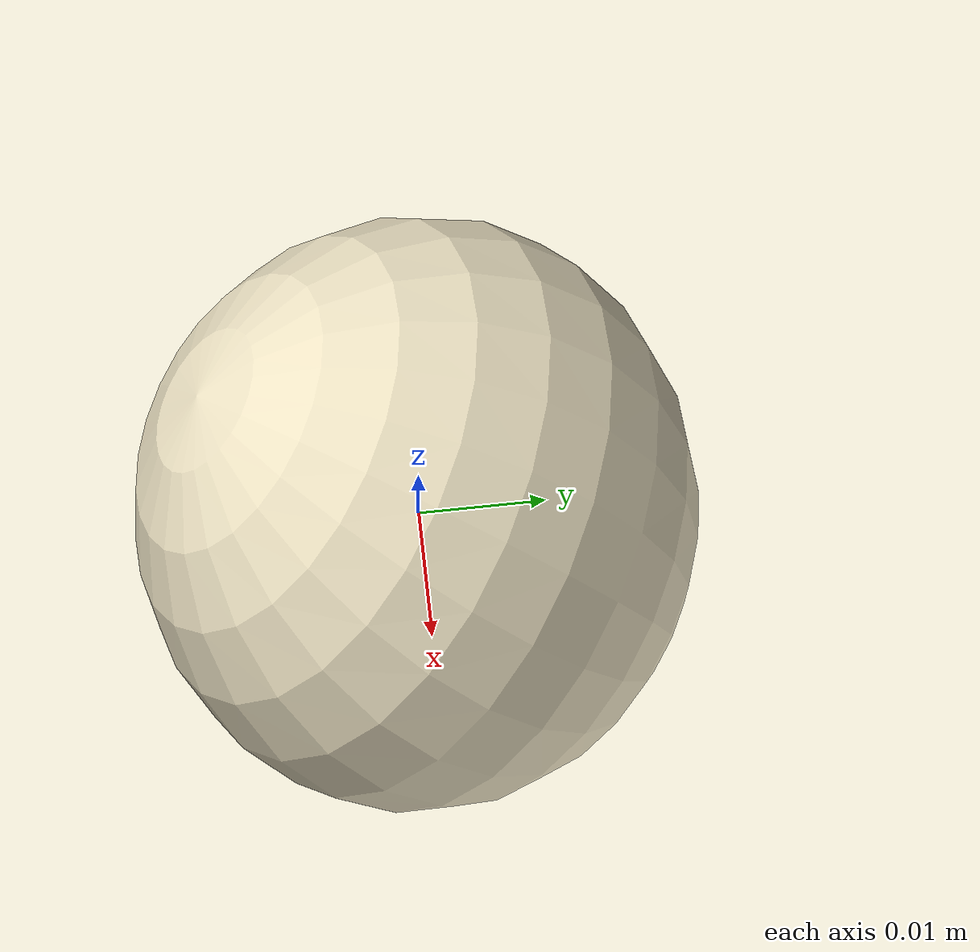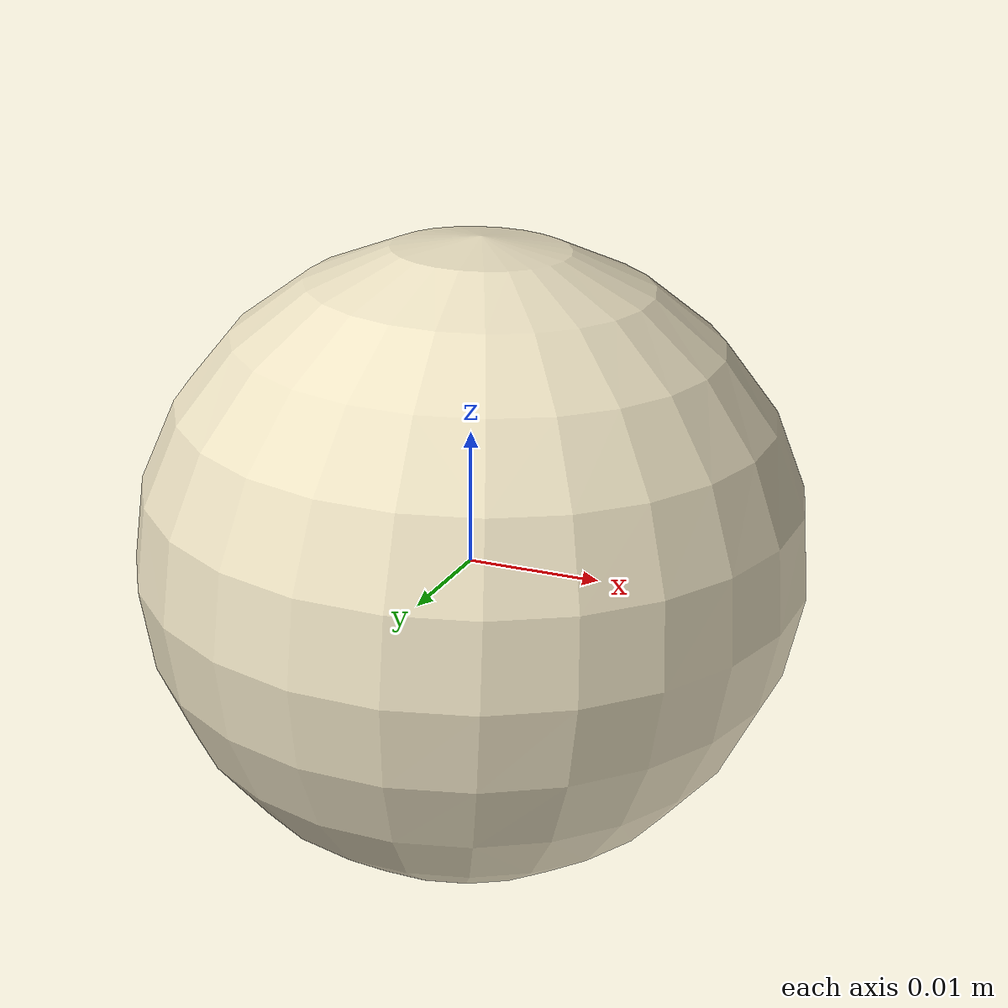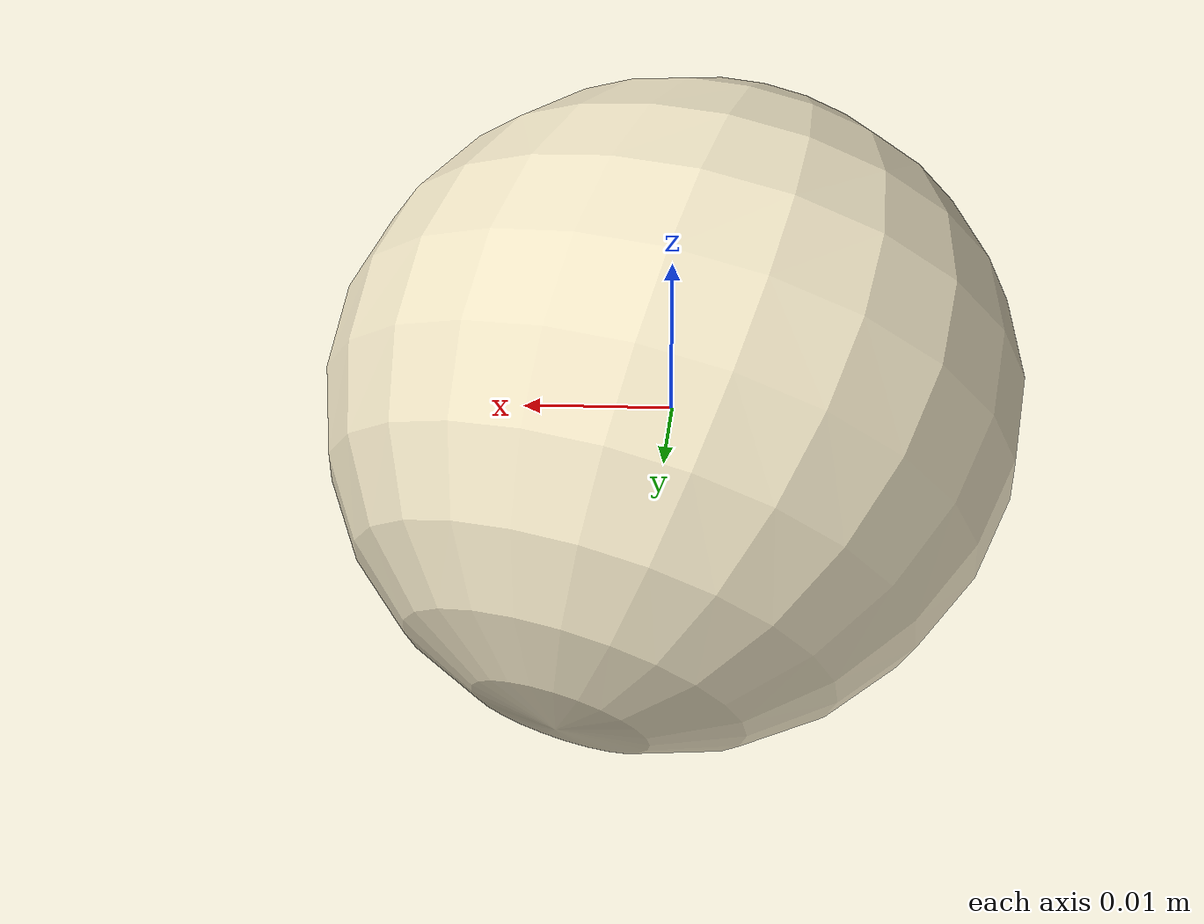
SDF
<?xml version="1.0"?>
<sdf version="1.7">
  <model name="cotton_pick_A_16">
    <static>false</static>
    <allow_auto_disable>false</allow_auto_disable>
    <link name="cotton_pick_A_16_link">
      <gravity>false</gravity>
      <self_collide>false</self_collide>
      <inertial>
        <mass>0.01200</mass>
        <inertia>
          <ixx>0.00000191</ixx>
          <iyy>0.00000191</iyy>
          <izz>0.00000191</izz>
          <ixy>0</ixy>
          <ixz>0</ixz>
          <iyz>0</iyz>
        </inertia>
      </inertial>
      <visual name="cotton_pick_A_16_visual">
        <geometry>
          <mesh>
            <uri>model://cotton_pick_A_16/meshes/cotton_pick_A_16.dae</uri>
          </mesh>
        </geometry>
      </visual>
      <collision name="cotton_pick_A_16_sphere_collision">
        <geometry>
          <sphere>
            <radius>0.01997</radius>
          </sphere>
        </geometry>
        <surface>
          <friction>
            <ode>
              <mu>1.6</mu>
              <mu2>1.6</mu2>
            </ode>
          </friction>
          <contact>
            <ode>
              <kp>8000</kp>
              <kd>80</kd>
            </ode>
          </contact>
        </surface>
      </collision>
    </link>
  </model>
</sdf>
